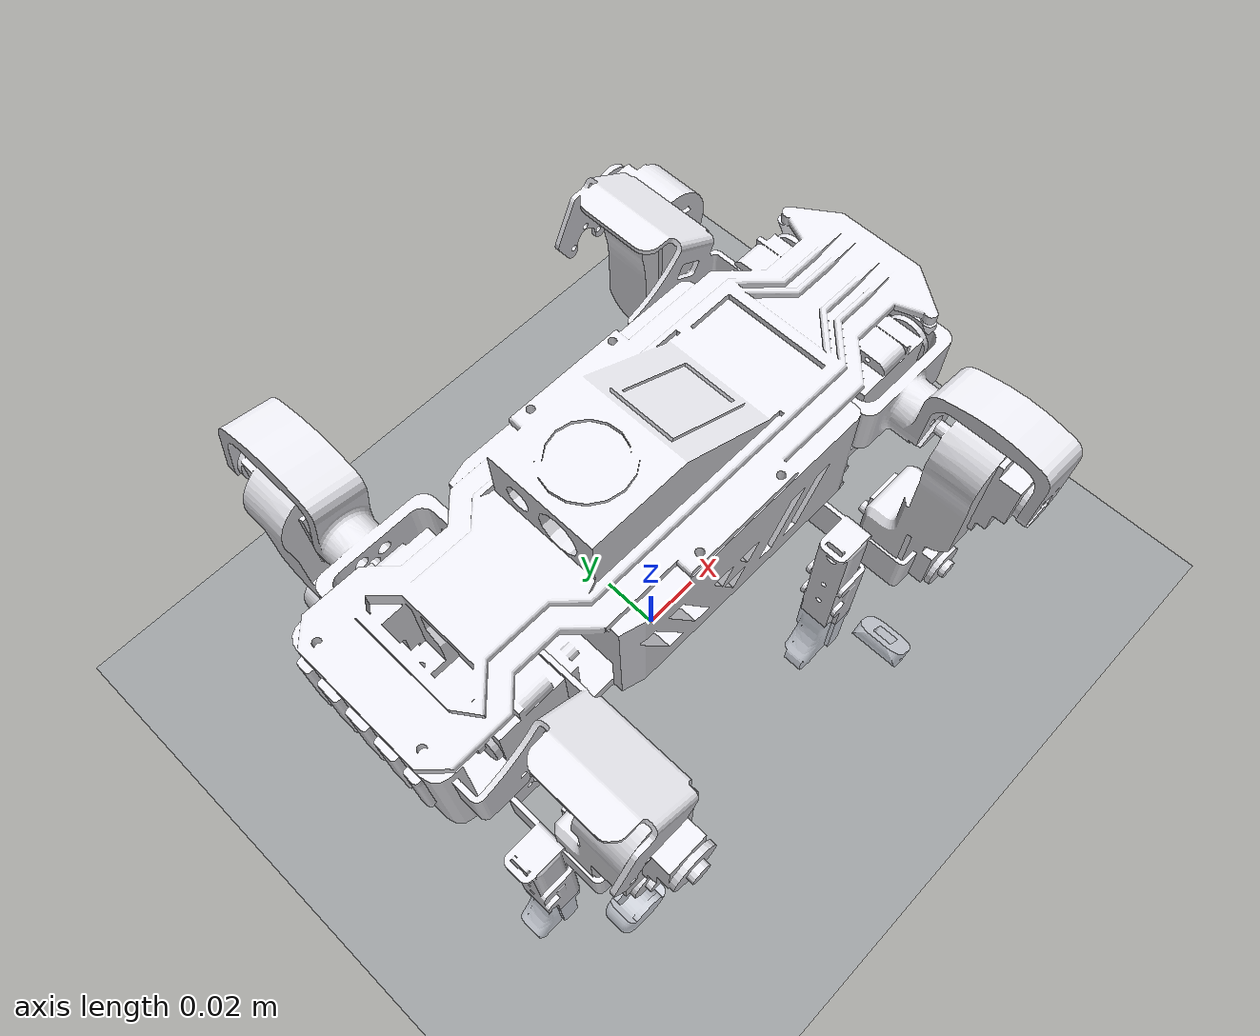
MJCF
<mujoco model="xgourdf">
  <!-- 1. 添加default配置，区分motor、visual、collision类（与Lite3保持一致） -->
  <option gravity="0 0 -9.81"
          timestep="0.002" />
  <default>
    <default class="robot">
      <default class="motor">
        <joint type="hinge" /> <!-- 显式声明关节类型为铰链 -->
        <motor />
      </default>
      <default class="visual">
        <geom material="visualgeom" contype="0" conaffinity="0" group="2" /> <!-- 视觉几何：无碰撞，分组2 -->
      </default>
      <default class="collision">
        <geom material="collision_material" condim="3" contype="0" conaffinity="1" group="1" solref="0.005 1" solimp="0.99 0.99 1e-05" friction="1 0.01 0.01" /> <!-- 碰撞几何：有碰撞，分组1 -->
      </default>
    </default>
  </default>

  <!-- 2. 补充compiler的autolimits属性（与Lite3保持一致） -->
  <compiler angle="radian" />
  <compiler autolimits="true"/>

  <!-- 3. 完善asset：添加材质、纹理（保留原有mesh路径） -->
  <asset>
    <!-- 基础材质（与Lite3一致） -->
    <material name="default_material" rgba="0.7 0.7 0.7 1" />
    <material name="collision_material" rgba="0.0 0.4 0.8 0.2" /> <!-- 碰撞几何半透明蓝色 -->
    <material name="visualgeom" rgba="0.8902 0.8902 0.91373 1" /> <!-- 视觉几何使用原有颜色 -->
    <!-- 地板纹理（与Lite3一致） -->
    <texture type="2d" name="checker" builtin="checker" rgb1="0.2 0.3 0.4" rgb2="0.9 0.9 0.9" width="500" height="500"/>
    <material name="checker_mat" texture="checker" specular="1" shininess="1" texrepeat="15 15"/>

    <!-- 原有mesh路径（保留不变） -->
    <mesh name="body" file="../meshes/body.STL"/>
    <mesh name="bl_hip" file="../meshes/bl_hip.STL"/>
    <mesh name="bl_thigh" file="../meshes/bl_thigh.STL"/>
    <mesh name="bl_calf" file="../meshes/bl_calf.STL"/>
    <mesh name="bl_foot" file="../meshes/bl_foot.STL"/>
    <mesh name="br_hip" file="../meshes/br_hip.STL"/>
    <mesh name="br_thigh" file="../meshes/br_thigh.STL"/>
    <mesh name="br_calf" file="../meshes/br_calf.STL"/>
    <mesh name="br_foot" file="../meshes/br_foot.STL"/>
    <mesh name="fl_hip" file="../meshes/fl_hip.STL"/>
    <mesh name="fl_thigh" file="../meshes/fl_thigh.STL"/>
    <mesh name="fl_calf" file="../meshes/fl_calf.STL"/>
    <mesh name="fl_foot" file="../meshes/fl_foot.STL"/>
    <mesh name="fr_hip" file="../meshes/fr_hip.STL"/>
    <mesh name="fr_thigh" file="../meshes/fr_thigh.STL"/>
    <mesh name="fr_calf" file="../meshes/fr_calf.STL"/>
    <mesh name="fr_foot" file="../meshes/fr_foot.STL"/>
  </asset>

  <!-- 4. 重构worldbody：添加地板、灯光、根body（浮动基）、相机、缺失的site -->
  <worldbody>
    <!-- 地板（与Lite3一致） -->
    <geom name="floor" type="plane" size="10 10 0.1" pos="0 0 0" material="checker_mat"/>
    <!-- 环境光（与Lite3一致） -->
    <light directional="true" pos="-0.5 0.5 3" dir="0 0 -1"/>

    <!-- 根body：包裹整个机器人，添加浮动关节、IMU站点、body站点、相机（对应sensor的引用） -->
    <body name="BODY" pos="0 0 0.1" quat="1 0 0 0" childclass="robot">
      <!-- 浮动关节：机器人的自由基（与Lite3的floating_base一致） -->
      <freejoint name="floating_base" />
      <!-- IMU站点：修复sensor中imu_site的引用缺失 -->
      <site name="imu_site" pos="0 0 0" size="0.005" rgba="1 0 0 1"/>
      <!-- Body站点：修复sensor中body_site的引用缺失 -->
      <site name="body_site" pos="0 0 0" size="0.005" rgba="0 1 0 1"/>
      <!-- 根body的惯性参数（可根据实际需求调整，这里给默认值） -->
      <inertial pos="0 0 0" mass="0.18845" diaginertia="7.6287e-05 0.00052346 0.00055683"/>
      <!-- 机器人主体：拆分为碰撞几何和视觉几何（与Lite3的TORSO一致） -->
      <geom name="body_collision" pos="0 0 0" quat="1 0 0 0" type="mesh" mesh="body" class="collision" />
      <geom name="body_visual" pos="0 0 0" quat="1 0 0 0" type="mesh" mesh="body" class="visual" />

      <!-- 左后腿（保留原有参数，geom拆分为碰撞和视觉，FOOT改为BODY节点） -->
      <body name="bl_hip" pos="-0.067842 0.02085 0">
        <inertial pos="0.002003 0.025876 0.005514" mass="0.0105904" diaginertia="4.133e-06 1.552e-06 4.328e-06"/>
        <joint name="bl_hip_joint" type="hinge" pos="0 0 0" axis="1 0 0" range="-0.3 0.3" actuatorfrcrange="-0.45 0.45" class="motor"/>
        <geom name="bl_hip_collision" type="mesh" mesh="bl_hip" class="collision"/>
        <geom name="bl_hip_visual" type="mesh" mesh="bl_hip" class="visual"/>
        <body name="bl_thigh" pos="0 0.036855 0">
          <inertial pos="-5.9763e-05 -0.0020681 -0.028882" mass="0.045114" diaginertia="1.7197e-05 1.6442e-05 4.2244e-06"/>
          <joint name="bl_thigh_joint" type="hinge" pos="0 0 0" axis="0 1 0" range="-1 2" actuatorfrcrange="-0.45 0.45" class="motor"/>
          <geom name="bl_thigh_collision" type="mesh" mesh="bl_thigh" class="collision"/>
          <geom name="bl_thigh_visual" type="mesh" mesh="bl_thigh" class="visual"/>
          <body name="bl_calf" pos="0 0 -0.059063">
            <inertial pos="0.000728 0.002071 -0.035626" mass="0.0128105101695308" diaginertia="7.467e-06 7.596e-06 5.956e-07"/>
            <joint name="bl_calf_joint" type="hinge" pos="0 0 0" axis="0 1 0" range="-2.69 -0.5" actuatorfrcrange="-0.45 0.45" class="motor"/>
            <geom name="bl_calf_collision" type="mesh" mesh="bl_calf" class="collision"/>
            <geom name="bl_calf_visual" type="mesh" mesh="bl_calf" class="visual"/>
            <!-- 关键修改：将bl_foot从geom改为body节点 -->
            <body name="bl_foot" pos="0 0 -0.065864" quat="1 0 0 0">
              <inertial pos="-0.002152 0.000643 -0.002230" mass="0.00167992580343433" diaginertia="7.540e-08 3.805e-08 7.736e-08"/>
              <geom name="bl_foot_collision" type="mesh" mesh="bl_foot" class="collision"/>
              <geom name="bl_foot_visual" type="mesh" mesh="bl_foot" class="visual"/>
            </body>
          </body>
        </body>
      </body>

      <!-- 右后腿（保留原有参数，geom拆分为碰撞和视觉，FOOT改为BODY节点） -->
      <body name="br_hip" pos="-0.05616 -0.02085 0">
        <inertial pos="-0.009679 -0.025876 0.005514" mass="0.01059" diaginertia="4.133e-06 1.552e-06 4.328e-06"/>
        <joint name="br_hip_joint" type="hinge" pos="0 0 0" axis="1 0 0" range="-0.3 0.3" actuatorfrcrange="-0.45 0.45" class="motor"/>
        <geom name="br_hip_collision" type="mesh" mesh="br_hip" class="collision"/>
        <geom name="br_hip_visual" type="mesh" mesh="br_hip" class="visual"/>
        <body name="br_thigh" pos="-0.011685 -0.03686 0">
          <inertial pos="-5.894e-05 0.0020738 -0.028881" mass="0.045112" diaginertia="1.7194e-05 1.6439e-05 4.2244e-06"/>
          <joint name="br_thigh_joint" type="hinge" pos="0 0 0" axis="0 1 0" range="-1 2" actuatorfrcrange="-0.45 0.45" class="motor"/>
          <geom name="br_thigh_collision" type="mesh" mesh="br_thigh" class="collision"/>
          <geom name="br_thigh_visual" type="mesh" mesh="br_thigh" class="visual"/>
          <body name="br_calf" pos="0 0 -0.059063">
            <inertial pos="0.000728 -0.002067 -0.035621" mass="0.0128088078540617" diaginertia="7.466e-06 7.596e-06 5.952e-07"/>
            <joint name="br_calf_joint" type="hinge" pos="0 0 0" axis="0 1 0" range="-2.69 -0.5" actuatorfrcrange="-0.45 0.45" class="motor"/>
            <geom name="br_calf_collision" type="mesh" mesh="br_calf" class="collision"/>
            <geom name="br_calf_visual" type="mesh" mesh="br_calf" class="visual"/>
            <!-- 关键修改：将br_foot从geom改为body节点 -->
            <body name="br_foot" pos="0 0 -0.065864" quat="1 0 0 0">
              <inertial pos="-0.002152 -0.000638 -0.002230" mass="0.00167996390771006" diaginertia="7.540e-08 3.805e-08 7.736e-08"/>
              <geom name="br_foot_collision" type="mesh" mesh="br_foot" class="collision"/>
              <geom name="br_foot_visual" type="mesh" mesh="br_foot" class="visual"/>
            </body>
          </body>
        </body>
      </body>

      <!-- 左前腿（保留原有参数，geom拆分为碰撞和视觉，FOOT改为BODY节点） -->
      <body name="fl_hip" pos="0.062526 0.020224 0">
        <inertial pos="0.00232573 0.025876 0.00551368" mass="0.0105904" diaginertia="4.1334e-06 1.5517e-06 4.3284e-06"/>
        <joint name="fl_hip_joint" type="hinge" pos="0 0 0" axis="1 0 0" range="-0.3 0.3" actuatorfrcrange="-0.45 0.45" class="motor"/>
        <geom name="fl_hip_collision" type="mesh" mesh="fl_hip" class="collision"/>
        <geom name="fl_hip_visual" type="mesh" mesh="fl_hip" class="visual"/>
        <body name="fl_thigh" pos="0.00031911 0.037482 0">
          <inertial pos="-5.9763e-05 -0.0026948 -0.028882" mass="0.045114" diaginertia="1.7197e-05 1.6442e-05 4.2244e-06"/>
          <joint name="fl_thigh_joint" type="hinge" pos="0 0 0" axis="0 1 0" range="-1 2" actuatorfrcrange="-0.45 0.45" class="motor"/>
          <geom name="fl_thigh_collision" type="mesh" mesh="fl_thigh" class="collision"/>
          <geom name="fl_thigh_visual" type="mesh" mesh="fl_thigh" class="visual"/>
          <body name="fl_calf" pos="-1.4535e-05 0 -0.059049">
            <inertial pos="0.000566 0.001446 -0.035644" mass="0.0128105159723828" diaginertia="7.470e-06 7.596e-06 5.925e-07"/>
            <joint name="fl_calf_joint" type="hinge" pos="0 0 0" axis="0 1 0" range="-2.69 -0.5" actuatorfrcrange="-0.45 0.45" class="motor"/>
            <geom name="fl_calf_collision" type="mesh" mesh="fl_calf" class="collision"/>
            <geom name="fl_calf_visual" type="mesh" mesh="fl_calf" class="visual"/>
            <!-- 关键修改：将fl_foot从geom改为body节点 -->
            <body name="fl_foot" pos="-0.00030458 0 -0.065887" quat="1 0 0 0">
              <inertial pos="-0.002162 0.000019 -0.002212" mass="0.00167992580204063" diaginertia="7.553e-08 3.805e-08 7.723e-08"/>
              <geom name="fl_foot_collision" type="mesh" mesh="fl_foot" class="collision"/>
              <geom name="fl_foot_visual" type="mesh" mesh="fl_foot" class="visual"/>
            </body>
          </body>
        </body>
      </body>

      <!-- 右前腿（保留原有参数，geom拆分为碰撞和视觉，FOOT改为BODY节点） -->
      <body name="fr_hip" pos="0.062526 -0.02085 0">
        <inertial pos="0.0023257 -0.025249 0.0055137" mass="0.01059" diaginertia="4.1334e-06 1.5517e-06 4.3284e-06"/>
        <joint name="fr_hip_joint" type="hinge" pos="0 0 0" axis="1 0 0" range="-0.3 0.3" actuatorfrcrange="-0.45 0.45" class="motor"/>
        <geom name="fr_hip_collision" type="mesh" mesh="fr_hip" class="collision"/>
        <geom name="fr_hip_visual" type="mesh" mesh="fr_hip" class="visual"/>
        <body name="fr_thigh" pos="0.00031911 -0.03686 0">
          <inertial pos="-5.894e-05 0.0027005 -0.028881" mass="0.045112" diaginertia="1.7194e-05 1.6439e-05 4.2244e-06"/>
          <joint name="fr_thigh_joint" type="hinge" pos="0 0 0" axis="0 1 0" range="-1 2" actuatorfrcrange="-0.45 0.45" class="motor"/>
          <geom name="fr_thigh_collision" type="mesh" mesh="fr_thigh" class="collision"/>
          <geom name="fr_thigh_visual" type="mesh" mesh="fr_thigh" class="visual"/>
          <body name="fr_calf" pos="-1.4535e-05 0 -0.059049">
            <inertial pos="0.000566 -0.001442 -0.035639" mass="0.012809" diaginertia="7.470e-06 7.596e-06 5.921e-07"/>
            <joint name="fr_calf_joint" type="hinge" pos="0 0 0" axis="0 1 0" range="-2.69 -0.5" actuatorfrcrange="-0.45 0.45" class="motor"/>
            <geom name="fr_calf_collision" type="mesh" mesh="fr_calf" class="collision"/>
            <geom name="fr_calf_visual" type="mesh" mesh="fr_calf" class="visual"/>
            <!-- 关键修改：将fr_foot从geom改为body节点 -->
            <body name="fr_foot" pos="0 0 -0.065878" quat="1 0 0 0">
              <inertial pos="-0.002467 -0.000014 -0.002220" mass="0.00168" diaginertia="7.553e-08 3.806e-08 7.723e-08"/>
              <geom name="fr_foot_collision" type="mesh" mesh="fr_foot" class="collision"/>
              <geom name="fr_foot_visual" type="mesh" mesh="fr_foot" class="visual"/>
            </body>
          </body>
        </body>
      </body>

      <!-- 相机（与Lite3一致，用于可视化） -->
      <camera name="front_camera" mode="track" fovy="90.0" quat="4.329780281177467e-17 4.329780281177466e-17 0.7071067811865475 0.7071067811865476" pos="0.0 2.0 0.5" />
      <camera name="side_camera" mode="track" fovy="90.0" quat="-0.5 -0.4999999999999999 0.5 0.5000000000000001" pos="-2.0 0.0 0.5" />
    </body>
  </worldbody>

  <!-- 5. 修复actuator：修正fl_calf_joint_ctrl的错误引用 -->
  <actuator>
    <motor name="bl_hip_joint_ctrl" joint="bl_hip_joint" class="motor" gear="1" ctrlrange="-0.45 0.45"/>
    <motor name="bl_thigh_joint_ctrl" joint="bl_thigh_joint" class="motor" gear="1" ctrlrange="-0.45 0.45"/>
    <motor name="bl_calf_joint_ctrl" joint="bl_calf_joint" class="motor" gear="1" ctrlrange="-0.45 0.45"/>
    <motor name="br_hip_joint_ctrl" joint="br_hip_joint" class="motor" gear="1" ctrlrange="-0.45 0.45"/>
    <motor name="br_thigh_joint_ctrl" joint="br_thigh_joint" class="motor" gear="1" ctrlrange="-0.45 0.45"/>
    <motor name="br_calf_joint_ctrl" joint="br_calf_joint" class="motor" gear="1" ctrlrange="-0.45 0.45"/>
    <motor name="fl_hip_joint_ctrl" joint="fl_hip_joint" class="motor" gear="1" ctrlrange="-0.45 0.45"/>
    <motor name="fl_thigh_joint_ctrl" joint="fl_thigh_joint" class="motor" gear="1" ctrlrange="-0.45 0.45"/>
    <motor name="fl_calf_joint_ctrl" joint="fl_calf_joint" class="motor" gear="1" ctrlrange="-0.45 0.45"/> <!-- 修复：原指向FL_Knee_joint -->
    <motor name="fr_hip_joint_ctrl" joint="fr_hip_joint" class="motor" gear="1" ctrlrange="-0.45 0.45"/>
    <motor name="fr_thigh_joint_ctrl" joint="fr_thigh_joint" class="motor" gear="1" ctrlrange="-0.45 0.45"/>
    <motor name="fr_calf_joint_ctrl" joint="fr_calf_joint" class="motor" gear="1" ctrlrange="-0.45 0.45"/>
  </actuator>

  <!-- 6. 调整contact：body1改为根body名称BODY（与重构后的结构一致），现在foot是body，引用有效 -->
  <contact>
    <exclude body1="BODY" body2="bl_hip" />
    <exclude body1="bl_hip" body2="bl_thigh" />
    <exclude body1="bl_thigh" body2="bl_calf" />
    <exclude body1="bl_calf" body2="bl_foot" />
    <exclude body1="BODY" body2="br_hip" />
    <exclude body1="br_hip" body2="br_thigh" />
    <exclude body1="br_thigh" body2="br_calf" />
    <exclude body1="br_calf" body2="br_foot" />
    <exclude body1="BODY" body2="fl_hip" />
    <exclude body1="fl_hip" body2="fl_thigh" />
    <exclude body1="fl_thigh" body2="fl_calf" />
    <exclude body1="fl_calf" body2="fl_foot" />
    <exclude body1="BODY" body2="fr_hip" />
    <exclude body1="fr_hip" body2="fr_thigh" />
    <exclude body1="fr_thigh" body2="fr_calf" />
    <exclude body1="fr_calf" body2="fr_foot" />
  </contact>

  <!-- 7. 保留sensor：已修复site引用，无需修改 -->
  <sensor>
    <framepos name="body_site_pos" objtype="site" objname="body_site" />
    <framequat name="body_site_quat" objtype="site" objname="body_site" />
    <framelinvel name="body_site_linvel" objtype="site" objname="body_site" />
    <frameangvel name="body_site_angvel" objtype="site" objname="body_site" />
    <velocimeter name="body_site_vel" site="body_site" />
    <accelerometer site="imu_site"/>
    <gyro          site="imu_site"/>
  </sensor>
</mujoco>
